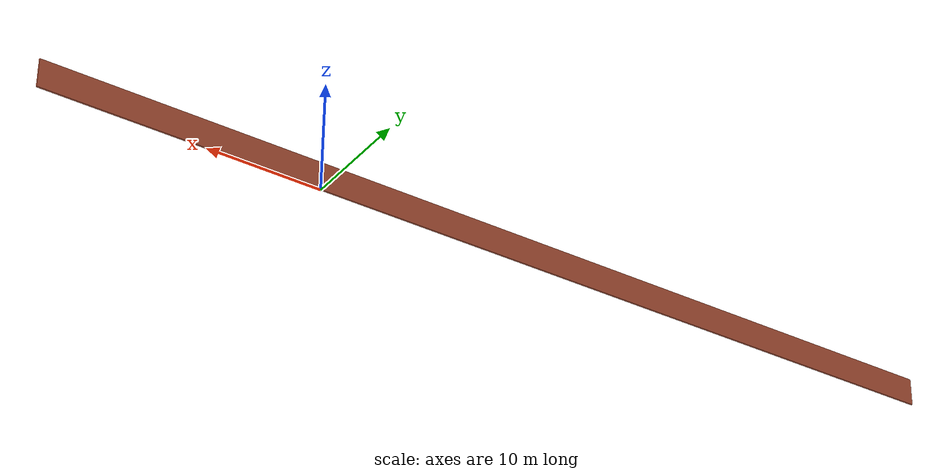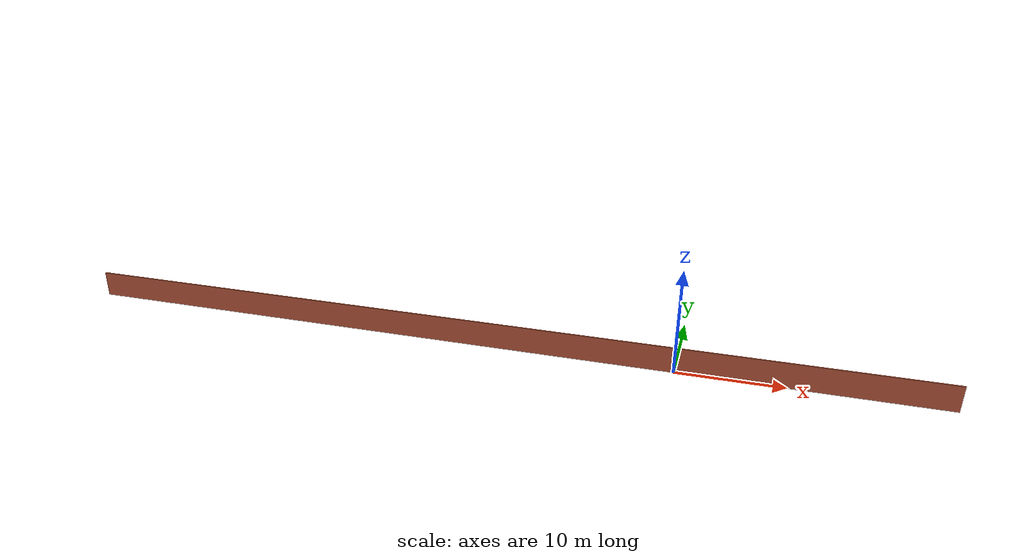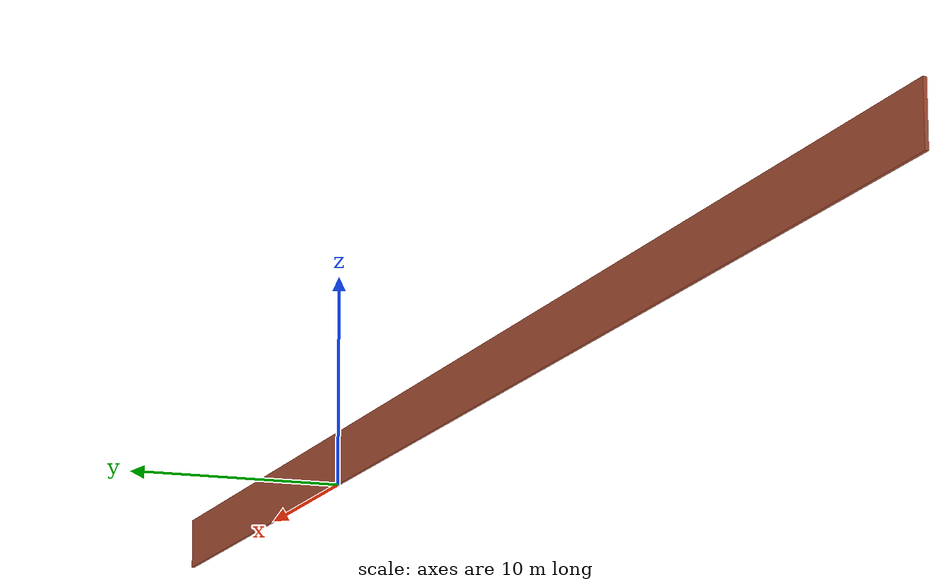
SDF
<?xml version='1.0'?>
<sdf version='1.5'>
  <model name='map_final_21'>
    <pose>-18 0 0 0 -0 0</pose>
    <link name='Wall_7'>
      <collision name='Wall_7_Collision'>
        <geometry>
          <box>
            <size>84.15 0.15 2.5</size>
          </box>
        </geometry>
        <pose>0 0 1.25 0 -0 0</pose>
      </collision>
      <visual name='Wall_7_Visual'>
        <pose>0 0 1.25 0 -0 0</pose>
        <geometry>
          <box>
            <size>84.15 0.15 2.5</size>
          </box>
        </geometry>
        <material>
          <script>
            <uri>file://media/materials/scripts/gazebo.material</uri>
            <name>Gazebo/Bricks</name>
          </script>
          <ambient>1 1 1 1</ambient>
        </material>
      </visual>
      <pose>0 0 0 0 -0 3.14159</pose>
    </link>
    <static>1</static>
  </model>
</sdf>
